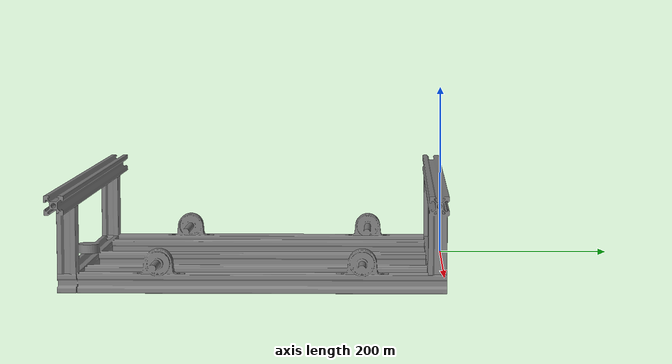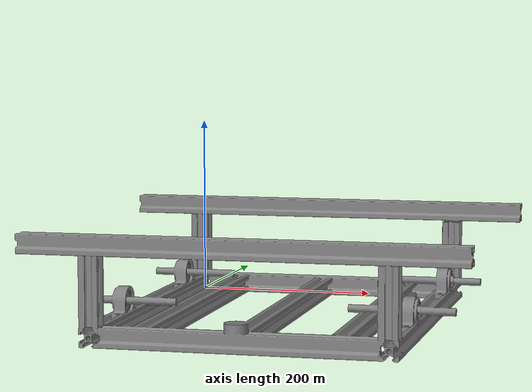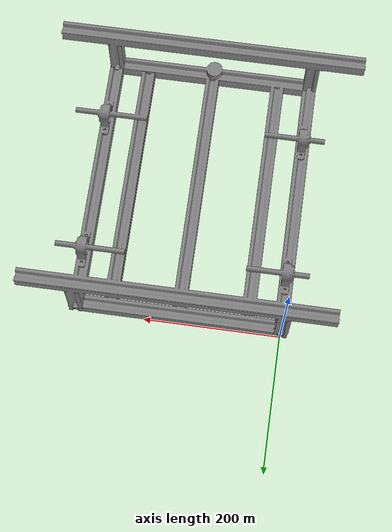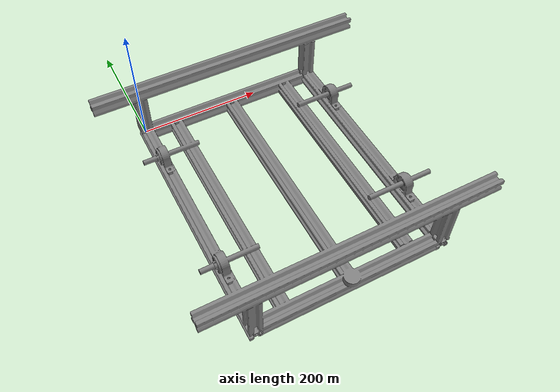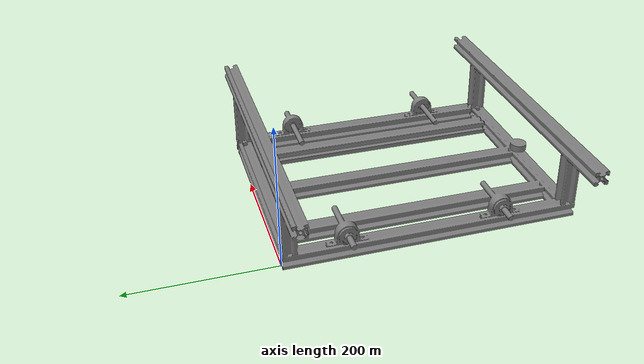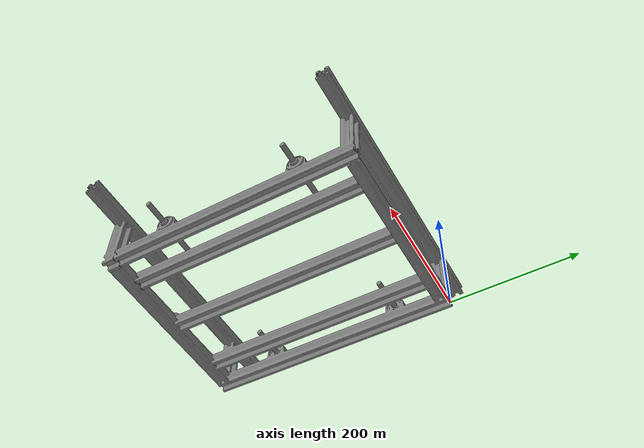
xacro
<?xml version="1.0"?>
<robot name="simple_stl_robot" xmlns:xacro="http://ros.org/wiki/xacro">

  <link name="base_link">
    <visual>
      <origin xyz="0 0 0" rpy="0 0 0"/>
      <geometry>
        <mesh filename="package://perceptron_robot_description/meshes/base_link.stl" scale="1 1 1"/>
      </geometry>
      <material name="gray"/>
    </visual>

    <collision>
      <origin xyz="0 0 0" rpy="0 0 0"/>
      <geometry>
        <mesh filename="package://perceptron_robot_description/meshes/base_link.stl" scale="1 1 1"/>
      </geometry>
    </collision>

    <inertial>
      <mass value="1.0"/>
      <origin xyz="0 0 0" rpy="0 0 0"/>
      <inertia ixx="0.001" ixy="0" ixz="0" iyy="0.001" iyz="0" izz="0.001"/>
    </inertial>
  </link>

  <material name="gray">
    <color rgba="0.5 0.5 0.5 1"/>
  </material>

</robot>
